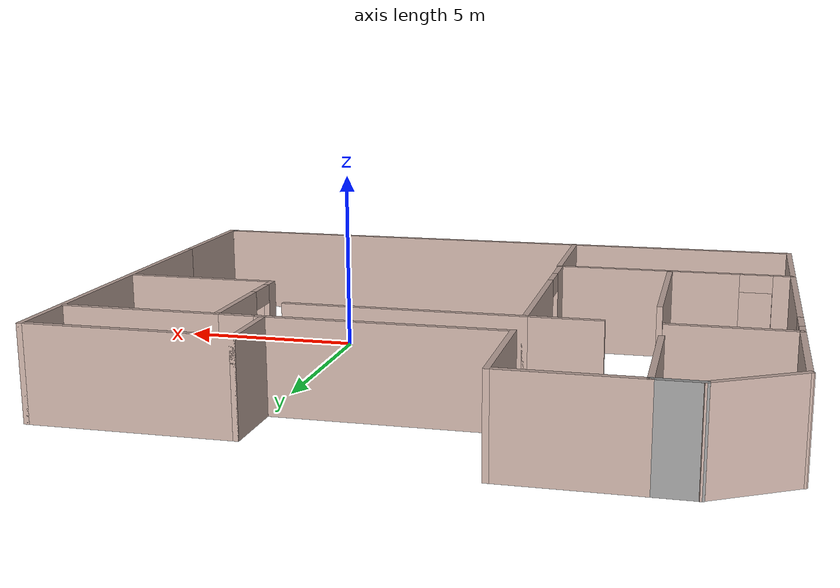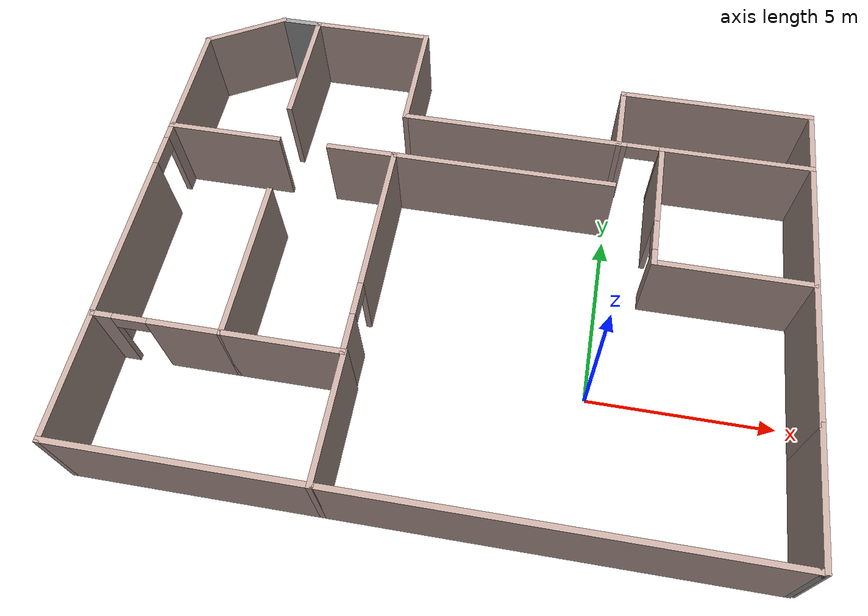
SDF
<?xml version='1.0'?>
<sdf version='1.6'>
  <model name='mybuilding'>
    <pose frame=''>-3.63067 2.91772 0 0 -0 0</pose>
    <link name='Wall_0'>
      <pose frame=''>-8.95386 -0.601226 0 0 -0 1.5708</pose>
      <visual name='Wall_0_Visual_0'>
        <pose frame=''>-0.724796 0 1.25 0 -0 0</pose>
        <geometry>
          <box>
            <size>4.80041 0.15 2.5</size>
          </box>
        </geometry>
        <material>
          <script>
            <uri>file://media/materials/scripts/gazebo.material</uri>
            <name>Gazebo/Grey</name>
          </script>
          <ambient>0.760784 0.662745 0.627451 1</ambient>
        </material>
        <meta>
          <layer>0</layer>
        </meta>
      </visual>
      <collision name='Wall_0_Collision_0'>
        <geometry>
          <box>
            <size>4.80041 0.15 2.5</size>
          </box>
        </geometry>
        <pose frame=''>-0.724796 0 1.25 0 -0 0</pose>
      </collision>
      <visual name='Wall_0_Visual_1'>
        <pose frame=''>2.8502 0 1.25 0 -0 0</pose>
        <geometry>
          <box>
            <size>0.549591 0.15 2.5</size>
          </box>
        </geometry>
        <material>
          <script>
            <uri>file://media/materials/scripts/gazebo.material</uri>
            <name>Gazebo/Grey</name>
          </script>
          <ambient>0.760784 0.662745 0.627451 1</ambient>
        </material>
        <meta>
          <layer>0</layer>
        </meta>
      </visual>
      <collision name='Wall_0_Collision_1'>
        <geometry>
          <box>
            <size>0.549591 0.15 2.5</size>
          </box>
        </geometry>
        <pose frame=''>2.8502 0 1.25 0 -0 0</pose>
      </collision>
      <visual name='Wall_0_Visual_2'>
        <pose frame=''>2.12541 0 2.25 0 -0 0</pose>
        <geometry>
          <box>
            <size>0.9 0.15 0.5</size>
          </box>
        </geometry>
        <material>
          <script>
            <uri>file://media/materials/scripts/gazebo.material</uri>
            <name>Gazebo/Grey</name>
          </script>
          <ambient>0.760784 0.662745 0.627451 1</ambient>
        </material>
        <meta>
          <layer>0</layer>
        </meta>
      </visual>
      <collision name='Wall_0_Collision_2'>
        <geometry>
          <box>
            <size>0.9 0.15 0.5</size>
          </box>
        </geometry>
        <pose frame=''>2.12541 0 2.25 0 -0 0</pose>
      </collision>
    </link>
    <link name='Wall_10'>
      <pose frame=''>-2.50385 -0.601226 0 0 -0 1.5708</pose>
      <visual name='Wall_10_Visual_0'>
        <pose frame=''>-2.5646 0 1.25 0 -0 0</pose>
        <geometry>
          <box>
            <size>1.12081 0.15 2.5</size>
          </box>
        </geometry>
        <material>
          <script>
            <uri>file://media/materials/scripts/gazebo.material</uri>
            <name>Gazebo/Grey</name>
          </script>
          <ambient>0.760784 0.662745 0.627451 1</ambient>
        </material>
        <meta>
          <layer>0</layer>
        </meta>
      </visual>
      <collision name='Wall_10_Collision_0'>
        <geometry>
          <box>
            <size>1.12081 0.15 2.5</size>
          </box>
        </geometry>
        <pose frame=''>-2.5646 0 1.25 0 -0 0</pose>
      </collision>
      <visual name='Wall_10_Visual_1'>
        <pose frame=''>1.0104 0 1.25 0 -0 0</pose>
        <geometry>
          <box>
            <size>4.22919 0.15 2.5</size>
          </box>
        </geometry>
        <material>
          <script>
            <uri>file://media/materials/scripts/gazebo.material</uri>
            <name>Gazebo/Grey</name>
          </script>
          <ambient>0.760784 0.662745 0.627451 1</ambient>
        </material>
        <meta>
          <layer>0</layer>
        </meta>
      </visual>
      <collision name='Wall_10_Collision_1'>
        <geometry>
          <box>
            <size>4.22919 0.15 2.5</size>
          </box>
        </geometry>
        <pose frame=''>1.0104 0 1.25 0 -0 0</pose>
      </collision>
      <visual name='Wall_10_Visual_2'>
        <pose frame=''>-1.55419 0 2.25 0 -0 0</pose>
        <geometry>
          <box>
            <size>0.9 0.15 0.5</size>
          </box>
        </geometry>
        <material>
          <script>
            <uri>file://media/materials/scripts/gazebo.material</uri>
            <name>Gazebo/Grey</name>
          </script>
          <ambient>0.760784 0.662745 0.627451 1</ambient>
        </material>
        <meta>
          <layer>0</layer>
        </meta>
      </visual>
      <collision name='Wall_10_Collision_2'>
        <geometry>
          <box>
            <size>0.9 0.15 0.5</size>
          </box>
        </geometry>
        <pose frame=''>-1.55419 0 2.25 0 -0 0</pose>
      </collision>
    </link>
    <link name='Wall_11'>
      <collision name='Wall_11_Collision'>
        <geometry>
          <box>
            <size>2 0.15 2.5</size>
          </box>
        </geometry>
        <pose frame=''>0 0 1.25 0 -0 0</pose>
      </collision>
      <visual name='Wall_11_Visual'>
        <pose frame=''>0 0 1.25 0 -0 0</pose>
        <geometry>
          <box>
            <size>2 0.15 2.5</size>
          </box>
        </geometry>
        <material>
          <script>
            <uri>file://media/materials/scripts/gazebo.material</uri>
            <name>Gazebo/Grey</name>
          </script>
          <ambient>0.760784 0.662745 0.627451 1</ambient>
        </material>
        <meta>
          <layer>0</layer>
        </meta>
      </visual>
      <pose frame=''>-3.42885 2.44877 0 0 -0 3.14159</pose>
    </link>
    <link name='Wall_13'>
      <collision name='Wall_13_Collision'>
        <geometry>
          <box>
            <size>3.5 0.15 2.5</size>
          </box>
        </geometry>
        <pose frame=''>0 0 1.25 0 -0 0</pose>
      </collision>
      <visual name='Wall_13_Visual'>
        <pose frame=''>0 0 1.25 0 -0 0</pose>
        <geometry>
          <box>
            <size>3.5 0.15 2.5</size>
          </box>
        </geometry>
        <material>
          <script>
            <uri>file://media/materials/scripts/gazebo.material</uri>
            <name>Gazebo/Grey</name>
          </script>
          <ambient>0.760784 0.662745 0.627451 1</ambient>
        </material>
        <meta>
          <layer>0</layer>
        </meta>
      </visual>
      <pose frame=''>-8.95386 4.12378 0 0 -0 1.5708</pose>
    </link>
    <link name='Wall_18'>
      <collision name='Wall_18_Collision'>
        <geometry>
          <box>
            <size>2.5 0.15 2.5</size>
          </box>
        </geometry>
        <pose frame=''>0 0 1.25 0 -0 0</pose>
      </collision>
      <visual name='Wall_18_Visual'>
        <pose frame=''>0 0 1.25 0 -0 0</pose>
        <geometry>
          <box>
            <size>2.5 0.15 2.5</size>
          </box>
        </geometry>
        <material>
          <script>
            <uri>file://media/materials/scripts/gazebo.material</uri>
            <name>Gazebo/Grey</name>
          </script>
          <ambient>0.760784 0.662745 0.627451 1</ambient>
        </material>
        <meta>
          <layer>0</layer>
        </meta>
      </visual>
      <pose frame=''>-7.93628 6.38627 0 0 -0 0.523599</pose>
    </link>
    <link name='Wall_19'>
      <collision name='Wall_19_Collision'>
        <geometry>
          <box>
            <size>1.25 0.15 2.5</size>
          </box>
        </geometry>
        <pose frame=''>0 0 1.25 0 -0 0</pose>
      </collision>
      <visual name='Wall_19_Visual'>
        <pose frame=''>0 0 1.25 0 -0 0</pose>
        <geometry>
          <box>
            <size>1.25 0.15 2.5</size>
          </box>
        </geometry>
        <material>
          <script>
            <uri>file://media/materials/scripts/gazebo.material</uri>
            <name>Gazebo/Grey</name>
          </script>
          <ambient>1 1 1 1</ambient>
        </material>
        <meta>
          <layer>0</layer>
        </meta>
      </visual>
      <pose frame=''>-6.36869 6.97377 0 0 -0 0</pose>
    </link>
    <link name='Wall_20'>
      <collision name='Wall_20_Collision'>
        <geometry>
          <box>
            <size>3.5 0.15 2.5</size>
          </box>
        </geometry>
        <pose frame=''>0 0 1.25 0 -0 0</pose>
      </collision>
      <visual name='Wall_20_Visual'>
        <pose frame=''>0 0 1.25 0 -0 0</pose>
        <geometry>
          <box>
            <size>3.5 0.15 2.5</size>
          </box>
        </geometry>
        <material>
          <script>
            <uri>file://media/materials/scripts/gazebo.material</uri>
            <name>Gazebo/Grey</name>
          </script>
          <ambient>0.760784 0.662745 0.627451 1</ambient>
        </material>
        <meta>
          <layer>0</layer>
        </meta>
      </visual>
      <pose frame=''>-5.81869 5.29877 0 0 0 -1.5708</pose>
    </link>
    <link name='Wall_22'>
      <collision name='Wall_22_Collision'>
        <geometry>
          <box>
            <size>3.5 0.15 2.5</size>
          </box>
        </geometry>
        <pose frame=''>0 0 1.25 0 -0 0</pose>
      </collision>
      <visual name='Wall_22_Visual'>
        <pose frame=''>0 0 1.25 0 -0 0</pose>
        <geometry>
          <box>
            <size>3.5 0.15 2.5</size>
          </box>
        </geometry>
        <material>
          <script>
            <uri>file://media/materials/scripts/gazebo.material</uri>
            <name>Gazebo/Grey</name>
          </script>
          <ambient>0.760784 0.662745 0.627451 1</ambient>
        </material>
        <meta>
          <layer>0</layer>
        </meta>
      </visual>
      <pose frame=''>-4.1437 6.97377 0 0 -0 0</pose>
    </link>
    <link name='Wall_24'>
      <collision name='Wall_24_Collision'>
        <geometry>
          <box>
            <size>3.25 0.15 2.5</size>
          </box>
        </geometry>
        <pose frame=''>0 0 1.25 0 -0 0</pose>
      </collision>
      <visual name='Wall_24_Visual'>
        <pose frame=''>0 0 1.25 0 -0 0</pose>
        <geometry>
          <box>
            <size>3.25 0.15 2.5</size>
          </box>
        </geometry>
        <material>
          <script>
            <uri>file://media/materials/scripts/gazebo.material</uri>
            <name>Gazebo/Grey</name>
          </script>
          <ambient>0.760784 0.662745 0.627451 1</ambient>
        </material>
        <meta>
          <layer>0</layer>
        </meta>
      </visual>
      <pose frame=''>-2.46869 5.42377 0 0 0 -1.5708</pose>
    </link>
    <link name='Wall_25'>
      <collision name='Wall_25_Collision'>
        <geometry>
          <box>
            <size>6.25 0.15 2.5</size>
          </box>
        </geometry>
        <pose frame=''>0 0 1.25 0 -0 0</pose>
      </collision>
      <visual name='Wall_25_Visual'>
        <pose frame=''>0 0 1.25 0 -0 0</pose>
        <geometry>
          <box>
            <size>6.25 0.15 2.5</size>
          </box>
        </geometry>
        <material>
          <script>
            <uri>file://media/materials/scripts/gazebo.material</uri>
            <name>Gazebo/Grey</name>
          </script>
          <ambient>0.760784 0.662745 0.627451 1</ambient>
        </material>
        <meta>
          <layer>0</layer>
        </meta>
      </visual>
      <pose frame=''>0.581305 3.87378 0 0 -0 0</pose>
    </link>
    <link name='Wall_27'>
      <collision name='Wall_27_Collision'>
        <geometry>
          <box>
            <size>6.25 0.15 2.5</size>
          </box>
        </geometry>
        <pose frame=''>0 0 1.25 0 -0 0</pose>
      </collision>
      <visual name='Wall_27_Visual'>
        <pose frame=''>0 0 1.25 0 -0 0</pose>
        <geometry>
          <box>
            <size>6.25 0.15 2.5</size>
          </box>
        </geometry>
        <material>
          <script>
            <uri>file://media/materials/scripts/gazebo.material</uri>
            <name>Gazebo/Grey</name>
          </script>
          <ambient>0.760784 0.662745 0.627451 1</ambient>
        </material>
        <meta>
          <layer>0</layer>
        </meta>
      </visual>
      <pose frame=''>0.546145 2.44877 0 0 -0 0</pose>
    </link>
    <link name='Wall_29'>
      <collision name='Wall_29_Collision'>
        <geometry>
          <box>
            <size>2 0.15 2.5</size>
          </box>
        </geometry>
        <pose frame=''>0 0 1.25 0 -0 0</pose>
      </collision>
      <visual name='Wall_29_Visual'>
        <pose frame=''>0 0 1.25 0 -0 0</pose>
        <geometry>
          <box>
            <size>2 0.15 2.5</size>
          </box>
        </geometry>
        <material>
          <script>
            <uri>file://media/materials/scripts/gazebo.material</uri>
            <name>Gazebo/Grey</name>
          </script>
          <ambient>0.760784 0.662745 0.627451 1</ambient>
        </material>
        <meta>
          <layer>0</layer>
        </meta>
      </visual>
      <pose frame=''>3.6313 4.79877 0 0 -0 1.5708</pose>
    </link>
    <link name='Wall_30'>
      <collision name='Wall_30_Collision'>
        <geometry>
          <box>
            <size>5.5 0.15 2.5</size>
          </box>
        </geometry>
        <pose frame=''>0 0 1.25 0 -0 0</pose>
      </collision>
      <visual name='Wall_30_Visual'>
        <pose frame=''>0 0 1.25 0 -0 0</pose>
        <geometry>
          <box>
            <size>5.5 0.15 2.5</size>
          </box>
        </geometry>
        <material>
          <script>
            <uri>file://media/materials/scripts/gazebo.material</uri>
            <name>Gazebo/Grey</name>
          </script>
          <ambient>0.760784 0.662745 0.627451 1</ambient>
        </material>
        <meta>
          <layer>0</layer>
        </meta>
      </visual>
      <pose frame=''>6.30631 5.72377 0 0 -0 0</pose>
    </link>
    <link name='Wall_34'>
      <pose frame=''>6.30631 3.87378 0 0 -0 0</pose>
      <visual name='Wall_34_Visual_0'>
        <pose frame=''>-2.60008 0 1.25 0 -0 0</pose>
        <geometry>
          <box>
            <size>0.299833 0.15 2.5</size>
          </box>
        </geometry>
        <material>
          <script>
            <uri>file://media/materials/scripts/gazebo.material</uri>
            <name>Gazebo/Grey</name>
          </script>
          <ambient>0.760784 0.662745 0.627451 1</ambient>
        </material>
        <meta>
          <layer>0</layer>
        </meta>
      </visual>
      <collision name='Wall_34_Collision_0'>
        <geometry>
          <box>
            <size>0.299833 0.15 2.5</size>
          </box>
        </geometry>
        <pose frame=''>-2.60008 0 1.25 0 -0 0</pose>
      </collision>
      <visual name='Wall_34_Visual_1'>
        <pose frame=''>0.599916 0 1.25 0 -0 0</pose>
        <geometry>
          <box>
            <size>4.30017 0.15 2.5</size>
          </box>
        </geometry>
        <material>
          <script>
            <uri>file://media/materials/scripts/gazebo.material</uri>
            <name>Gazebo/Grey</name>
          </script>
          <ambient>0.760784 0.662745 0.627451 1</ambient>
        </material>
        <meta>
          <layer>0</layer>
        </meta>
      </visual>
      <collision name='Wall_34_Collision_1'>
        <geometry>
          <box>
            <size>4.30017 0.15 2.5</size>
          </box>
        </geometry>
        <pose frame=''>0.599916 0 1.25 0 -0 0</pose>
      </collision>
      <visual name='Wall_34_Visual_2'>
        <pose frame=''>-2.00017 0 2.25 0 -0 0</pose>
        <geometry>
          <box>
            <size>0.9 0.15 0.5</size>
          </box>
        </geometry>
        <material>
          <script>
            <uri>file://media/materials/scripts/gazebo.material</uri>
            <name>Gazebo/Grey</name>
          </script>
          <ambient>0.760784 0.662745 0.627451 1</ambient>
        </material>
        <meta>
          <layer>0</layer>
        </meta>
      </visual>
      <collision name='Wall_34_Collision_2'>
        <geometry>
          <box>
            <size>0.9 0.15 0.5</size>
          </box>
        </geometry>
        <pose frame=''>-2.00017 0 2.25 0 -0 0</pose>
      </collision>
    </link>
    <link name='Wall_36'>
      <pose frame=''>4.84116 1.95661 0 0 0 -1.5708</pose>
      <visual name='Wall_36_Visual_0'>
        <pose frame=''>-0.684811 0 1.25 0 -0 0</pose>
        <geometry>
          <box>
            <size>2.38038 0.15 2.5</size>
          </box>
        </geometry>
        <material>
          <script>
            <uri>file://media/materials/scripts/gazebo.material</uri>
            <name>Gazebo/Grey</name>
          </script>
          <ambient>0.760784 0.662745 0.627451 1</ambient>
        </material>
        <meta>
          <layer>0</layer>
        </meta>
      </visual>
      <collision name='Wall_36_Collision_0'>
        <geometry>
          <box>
            <size>2.38038 0.15 2.5</size>
          </box>
        </geometry>
        <pose frame=''>-0.684811 0 1.25 0 -0 0</pose>
      </collision>
      <visual name='Wall_36_Visual_1'>
        <pose frame=''>1.64019 0 1.25 0 -0 0</pose>
        <geometry>
          <box>
            <size>0.469621 0.15 2.5</size>
          </box>
        </geometry>
        <material>
          <script>
            <uri>file://media/materials/scripts/gazebo.material</uri>
            <name>Gazebo/Grey</name>
          </script>
          <ambient>0.760784 0.662745 0.627451 1</ambient>
        </material>
        <meta>
          <layer>0</layer>
        </meta>
      </visual>
      <collision name='Wall_36_Collision_1'>
        <geometry>
          <box>
            <size>0.469621 0.15 2.5</size>
          </box>
        </geometry>
        <pose frame=''>1.64019 0 1.25 0 -0 0</pose>
      </collision>
      <visual name='Wall_36_Visual_2'>
        <pose frame=''>0.955379 0 2.25 0 -0 0</pose>
        <geometry>
          <box>
            <size>0.9 0.15 0.5</size>
          </box>
        </geometry>
        <material>
          <script>
            <uri>file://media/materials/scripts/gazebo.material</uri>
            <name>Gazebo/Grey</name>
          </script>
          <ambient>0.760784 0.662745 0.627451 1</ambient>
        </material>
        <meta>
          <layer>0</layer>
        </meta>
      </visual>
      <collision name='Wall_36_Collision_2'>
        <geometry>
          <box>
            <size>0.9 0.15 0.5</size>
          </box>
        </geometry>
        <pose frame=''>0.955379 0 2.25 0 -0 0</pose>
      </collision>
    </link>
    <link name='Wall_37'>
      <collision name='Wall_37_Collision'>
        <geometry>
          <box>
            <size>4.25 0.15 2.5</size>
          </box>
        </geometry>
        <pose frame=''>0 0 1.25 0 -0 0</pose>
      </collision>
      <visual name='Wall_37_Visual'>
        <pose frame=''>0 0 1.25 0 -0 0</pose>
        <geometry>
          <box>
            <size>4.25 0.15 2.5</size>
          </box>
        </geometry>
        <material>
          <script>
            <uri>file://media/materials/scripts/gazebo.material</uri>
            <name>Gazebo/Grey</name>
          </script>
          <ambient>0.760784 0.662745 0.627451 1</ambient>
        </material>
        <meta>
          <layer>0</layer>
        </meta>
      </visual>
      <pose frame=''>6.89116 0.156607 0 0 -0 0</pose>
    </link>
    <link name='Wall_39'>
      <collision name='Wall_39_Collision'>
        <geometry>
          <box>
            <size>3.5 0.15 2.5</size>
          </box>
        </geometry>
        <pose frame=''>0 0 1.25 0 -0 0</pose>
      </collision>
      <visual name='Wall_39_Visual'>
        <pose frame=''>0 0 1.25 0 -0 0</pose>
        <geometry>
          <box>
            <size>3.5 0.15 2.5</size>
          </box>
        </geometry>
        <material>
          <script>
            <uri>file://media/materials/scripts/gazebo.material</uri>
            <name>Gazebo/Grey</name>
          </script>
          <ambient>0.760784 0.662745 0.627451 1</ambient>
        </material>
        <meta>
          <layer>0</layer>
        </meta>
      </visual>
      <pose frame=''>-8.95386 -5.32623 0 0 0 -1.5708</pose>
    </link>
    <link name='Wall_4'>
      <collision name='Wall_4_Collision'>
        <geometry>
          <box>
            <size>3.25 0.15 2.5</size>
          </box>
        </geometry>
        <pose frame=''>0 0 1.25 0 -0 0</pose>
      </collision>
      <visual name='Wall_4_Visual'>
        <pose frame=''>0 0 1.25 0 -0 0</pose>
        <geometry>
          <box>
            <size>3.25 0.15 2.5</size>
          </box>
        </geometry>
        <material>
          <script>
            <uri>file://media/materials/scripts/gazebo.material</uri>
            <name>Gazebo/Grey</name>
          </script>
          <ambient>0.760784 0.662745 0.627451 1</ambient>
        </material>
        <meta>
          <layer>0</layer>
        </meta>
      </visual>
      <pose frame=''>-7.40385 2.44877 0 0 -0 0</pose>
    </link>
    <link name='Wall_40'>
      <collision name='Wall_40_Collision'>
        <geometry>
          <box>
            <size>6.66051 0.15 2.5</size>
          </box>
        </geometry>
        <pose frame=''>0 0 1.25 0 -0 0</pose>
      </collision>
      <visual name='Wall_40_Visual'>
        <pose frame=''>0 0 1.25 0 -0 0</pose>
        <geometry>
          <box>
            <size>6.66051 0.15 2.5</size>
          </box>
        </geometry>
        <material>
          <script>
            <uri>file://media/materials/scripts/gazebo.material</uri>
            <name>Gazebo/Grey</name>
          </script>
          <ambient>0.760784 0.662745 0.627451 1</ambient>
        </material>
        <meta>
          <layer>0</layer>
        </meta>
      </visual>
      <pose frame=''>-5.6986 -7.00122 0 0 -0 0</pose>
    </link>
    <link name='Wall_43'>
      <collision name='Wall_43_Collision'>
        <geometry>
          <box>
            <size>3.5 0.15 2.5</size>
          </box>
        </geometry>
        <pose frame=''>0 0 1.25 0 -0 0</pose>
      </collision>
      <visual name='Wall_43_Visual'>
        <pose frame=''>0 0 1.25 0 -0 0</pose>
        <geometry>
          <box>
            <size>3.5 0.15 2.5</size>
          </box>
        </geometry>
        <material>
          <script>
            <uri>file://media/materials/scripts/gazebo.material</uri>
            <name>Gazebo/Grey</name>
          </script>
          <ambient>0.760784 0.662745 0.627451 1</ambient>
        </material>
        <meta>
          <layer>0</layer>
        </meta>
      </visual>
      <pose frame=''>-2.4701 -5.32623 0 0 -0 1.5708</pose>
    </link>
    <link name='Wall_48'>
      <collision name='Wall_48_Collision'>
        <geometry>
          <box>
            <size>9.5 0.15 2.5</size>
          </box>
        </geometry>
        <pose frame=''>0 0 1.25 0 -0 0</pose>
      </collision>
      <visual name='Wall_48_Visual'>
        <pose frame=''>0 0 1.25 0 -0 0</pose>
        <geometry>
          <box>
            <size>9.5 0.15 2.5</size>
          </box>
        </geometry>
        <material>
          <script>
            <uri>file://media/materials/scripts/gazebo.material</uri>
            <name>Gazebo/Grey</name>
          </script>
          <ambient>0.760784 0.662745 0.627451 1</ambient>
        </material>
        <meta>
          <layer>0</layer>
        </meta>
      </visual>
      <pose frame=''>8.98131 1.04877 0 0 0 -1.5708</pose>
    </link>
    <link name='Wall_50'>
      <collision name='Wall_50_Collision'>
        <geometry>
          <box>
            <size>3.5 0.15 2.5</size>
          </box>
        </geometry>
        <pose frame=''>0 0 1.25 0 -0 0</pose>
      </collision>
      <visual name='Wall_50_Visual'>
        <pose frame=''>0 0 1.25 0 -0 0</pose>
        <geometry>
          <box>
            <size>3.5 0.15 2.5</size>
          </box>
        </geometry>
        <material>
          <script>
            <uri>file://media/materials/scripts/gazebo.material</uri>
            <name>Gazebo/Grey</name>
          </script>
          <ambient>0.760784 0.662745 0.627451 1</ambient>
        </material>
        <meta>
          <layer>0</layer>
        </meta>
      </visual>
      <pose frame=''>8.98131 -5.30123 0 0 0 -1.5708</pose>
    </link>
    <link name='Wall_53'>
      <collision name='Wall_53_Collision'>
        <geometry>
          <box>
            <size>11.5 0.15 2.5</size>
          </box>
        </geometry>
        <pose frame=''>0 0 1.25 0 -0 0</pose>
      </collision>
      <visual name='Wall_53_Visual'>
        <pose frame=''>0 0 1.25 0 -0 0</pose>
        <geometry>
          <box>
            <size>11.5 0.15 2.5</size>
          </box>
        </geometry>
        <material>
          <script>
            <uri>file://media/materials/scripts/gazebo.material</uri>
            <name>Gazebo/Grey</name>
          </script>
          <ambient>0.760784 0.662745 0.627451 1</ambient>
        </material>
        <meta>
          <layer>0</layer>
        </meta>
      </visual>
      <pose frame=''>3.2049 -7.00122 0 0 -0 0</pose>
    </link>
    <link name='Wall_54'>
      <collision name='Wall_54_Collision'>
        <geometry>
          <box>
            <size>0.15 0.15 2.5</size>
          </box>
        </geometry>
        <pose frame=''>0 0 1.25 0 -0 0</pose>
      </collision>
      <visual name='Wall_54_Visual'>
        <pose frame=''>0 0 1.25 0 -0 0</pose>
        <geometry>
          <box>
            <size>0.15 0.15 2.5</size>
          </box>
        </geometry>
        <material>
          <script>
            <uri>file://media/materials/scripts/gazebo.material</uri>
            <name>Gazebo/Grey</name>
          </script>
          <ambient>1 1 1 1</ambient>
        </material>
        <meta>
          <layer>0</layer>
        </meta>
      </visual>
      <pose frame=''>8.8799 -7.00122 0 0 -0 0</pose>
    </link>
    <link name='Wall_55'>
      <collision name='Wall_55_Collision'>
        <geometry>
          <box>
            <size>0.15 0.15 2.5</size>
          </box>
        </geometry>
        <pose frame=''>0 0 1.25 0 -0 0</pose>
      </collision>
      <visual name='Wall_55_Visual'>
        <pose frame=''>0 0 1.25 0 -0 0</pose>
        <geometry>
          <box>
            <size>0.15 0.15 2.5</size>
          </box>
        </geometry>
        <material>
          <script>
            <uri>file://media/materials/scripts/gazebo.material</uri>
            <name>Gazebo/Grey</name>
          </script>
          <ambient>1 1 1 1</ambient>
        </material>
        <meta>
          <layer>0</layer>
        </meta>
      </visual>
      <pose frame=''>8.8799 -7.00122 0 0 -0 0</pose>
    </link>
    <link name='Wall_6'>
      <pose frame=''>-7.27885 -3.65123 0 0 -0 0</pose>
      <visual name='Wall_6_Visual_0'>
        <pose frame=''>-1.44692 0 1.25 0 -0 0</pose>
        <geometry>
          <box>
            <size>0.606169 0.15 2.5</size>
          </box>
        </geometry>
        <material>
          <script>
            <uri>file://media/materials/scripts/gazebo.material</uri>
            <name>Gazebo/Grey</name>
          </script>
          <ambient>0.760784 0.662745 0.627451 1</ambient>
        </material>
        <meta>
          <layer>0</layer>
        </meta>
      </visual>
      <collision name='Wall_6_Collision_0'>
        <geometry>
          <box>
            <size>0.606169 0.15 2.5</size>
          </box>
        </geometry>
        <pose frame=''>-1.44692 0 1.25 0 -0 0</pose>
      </collision>
      <visual name='Wall_6_Visual_1'>
        <pose frame=''>0.753084 0 1.25 0 -0 0</pose>
        <geometry>
          <box>
            <size>1.99383 0.15 2.5</size>
          </box>
        </geometry>
        <material>
          <script>
            <uri>file://media/materials/scripts/gazebo.material</uri>
            <name>Gazebo/Grey</name>
          </script>
          <ambient>0.760784 0.662745 0.627451 1</ambient>
        </material>
        <meta>
          <layer>0</layer>
        </meta>
      </visual>
      <collision name='Wall_6_Collision_1'>
        <geometry>
          <box>
            <size>1.99383 0.15 2.5</size>
          </box>
        </geometry>
        <pose frame=''>0.753084 0 1.25 0 -0 0</pose>
      </collision>
      <visual name='Wall_6_Visual_2'>
        <pose frame=''>-0.693831 0 2.25 0 -0 0</pose>
        <geometry>
          <box>
            <size>0.9 0.15 0.5</size>
          </box>
        </geometry>
        <material>
          <script>
            <uri>file://media/materials/scripts/gazebo.material</uri>
            <name>Gazebo/Grey</name>
          </script>
          <ambient>0.760784 0.662745 0.627451 1</ambient>
        </material>
        <meta>
          <layer>0</layer>
        </meta>
      </visual>
      <collision name='Wall_6_Collision_2'>
        <geometry>
          <box>
            <size>0.9 0.15 0.5</size>
          </box>
        </geometry>
        <pose frame=''>-0.693831 0 2.25 0 -0 0</pose>
      </collision>
    </link>
    <link name='Wall_7'>
      <collision name='Wall_7_Collision'>
        <geometry>
          <box>
            <size>4.5 0.15 2.5</size>
          </box>
        </geometry>
        <pose frame=''>0 0 1.25 0 -0 0</pose>
      </collision>
      <visual name='Wall_7_Visual'>
        <pose frame=''>0 0 1.25 0 -0 0</pose>
        <geometry>
          <box>
            <size>4.5 0.15 2.5</size>
          </box>
        </geometry>
        <material>
          <script>
            <uri>file://media/materials/scripts/gazebo.material</uri>
            <name>Gazebo/Grey</name>
          </script>
          <ambient>0.760784 0.662745 0.627451 1</ambient>
        </material>
        <meta>
          <layer>0</layer>
        </meta>
      </visual>
      <pose frame=''>-5.60385 -1.47623 0 0 -0 1.5708</pose>
    </link>
    <link name='Wall_9'>
      <collision name='Wall_9_Collision'>
        <geometry>
          <box>
            <size>3.25 0.15 2.5</size>
          </box>
        </geometry>
        <pose frame=''>0 0 1.25 0 -0 0</pose>
      </collision>
      <visual name='Wall_9_Visual'>
        <pose frame=''>0 0 1.25 0 -0 0</pose>
        <geometry>
          <box>
            <size>3.25 0.15 2.5</size>
          </box>
        </geometry>
        <material>
          <script>
            <uri>file://media/materials/scripts/gazebo.material</uri>
            <name>Gazebo/Grey</name>
          </script>
          <ambient>0.760784 0.662745 0.627451 1</ambient>
        </material>
        <meta>
          <layer>0</layer>
        </meta>
      </visual>
      <pose frame=''>-4.05385 -3.65123 0 0 -0 0</pose>
    </link>
    <static>1</static>
  </model>
</sdf>
